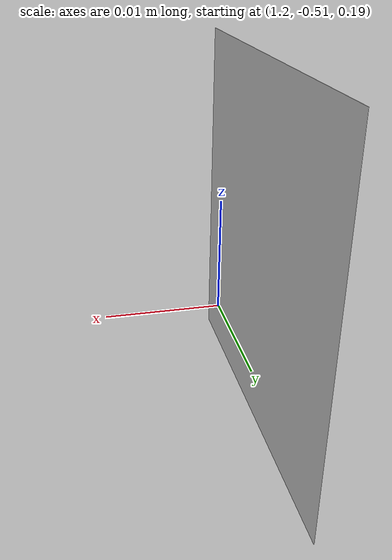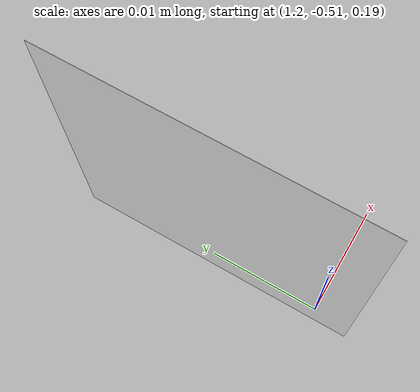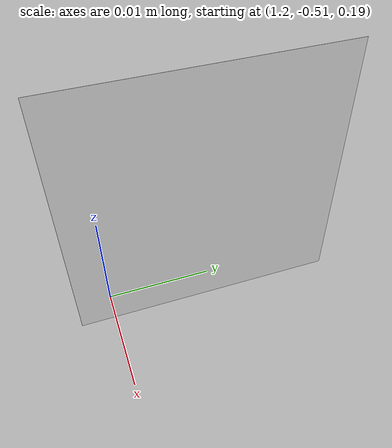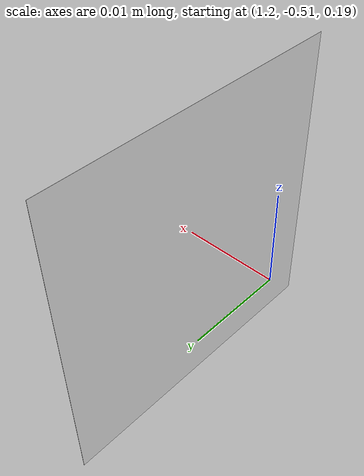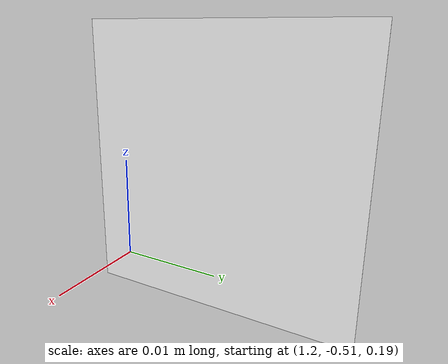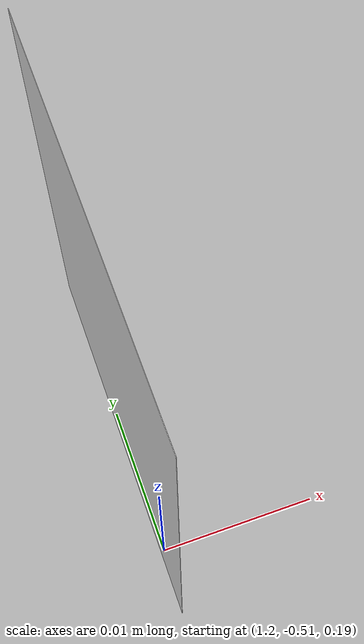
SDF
<sdf version="1.8">
 <world name="aruco_arena">
  <model name="aruco_upright_0">
   <static>true</static>
   <pose>1.2 -0.5 0.20 0 -1.57079632679 0</pose>
   <link name="tag">
    <visual name="white_margin">
     <geometry><plane><normal>0 0 1</normal><size>0.0266666667 0.0266666667</size></plane></geometry>
     <cast_shadows>false</cast_shadows>
     <material><ambient>1 1 1 1</ambient><diffuse>1 1 1 1</diffuse><specular>0 0 0 1</specular></material>
    </visual>
    <visual name="black_0_0">
     <pose>-0.0083333333 0.0083333333 1e-05 0 0 0</pose>
     <geometry><plane><normal>0 0 1</normal><size>0.0033333333 0.0033333333</size></plane></geometry>
     <cast_shadows>false</cast_shadows>
     <material><ambient>0 0 0 1</ambient><diffuse>0 0 0 1</diffuse><specular>0 0 0 1</specular></material>
    </visual>
    <visual name="black_0_1">
     <pose>-0.0050000000 0.0083333333 1e-05 0 0 0</pose>
     <geometry><plane><normal>0 0 1</normal><size>0.0033333333 0.0033333333</size></plane></geometry>
     <cast_shadows>false</cast_shadows>
     <material><ambient>0 0 0 1</ambient><diffuse>0 0 0 1</diffuse><specular>0 0 0 1</specular></material>
    </visual>
    <visual name="black_0_2">
     <pose>-0.0016666667 0.0083333333 1e-05 0 0 0</pose>
     <geometry><plane><normal>0 0 1</normal><size>0.0033333333 0.0033333333</size></plane></geometry>
     <cast_shadows>false</cast_shadows>
     <material><ambient>0 0 0 1</ambient><diffuse>0 0 0 1</diffuse><specular>0 0 0 1</specular></material>
    </visual>
    <visual name="black_0_3">
     <pose>0.0016666667 0.0083333333 1e-05 0 0 0</pose>
     <geometry><plane><normal>0 0 1</normal><size>0.0033333333 0.0033333333</size></plane></geometry>
     <cast_shadows>false</cast_shadows>
     <material><ambient>0 0 0 1</ambient><diffuse>0 0 0 1</diffuse><specular>0 0 0 1</specular></material>
    </visual>
    <visual name="black_0_4">
     <pose>0.0050000000 0.0083333333 1e-05 0 0 0</pose>
     <geometry><plane><normal>0 0 1</normal><size>0.0033333333 0.0033333333</size></plane></geometry>
     <cast_shadows>false</cast_shadows>
     <material><ambient>0 0 0 1</ambient><diffuse>0 0 0 1</diffuse><specular>0 0 0 1</specular></material>
    </visual>
    <visual name="black_0_5">
     <pose>0.0083333333 0.0083333333 1e-05 0 0 0</pose>
     <geometry><plane><normal>0 0 1</normal><size>0.0033333333 0.0033333333</size></plane></geometry>
     <cast_shadows>false</cast_shadows>
     <material><ambient>0 0 0 1</ambient><diffuse>0 0 0 1</diffuse><specular>0 0 0 1</specular></material>
    </visual>
    <visual name="black_1_0">
     <pose>-0.0083333333 0.0050000000 1e-05 0 0 0</pose>
     <geometry><plane><normal>0 0 1</normal><size>0.0033333333 0.0033333333</size></plane></geometry>
     <cast_shadows>false</cast_shadows>
     <material><ambient>0 0 0 1</ambient><diffuse>0 0 0 1</diffuse><specular>0 0 0 1</specular></material>
    </visual>
    <visual name="black_1_2">
     <pose>-0.0016666667 0.0050000000 1e-05 0 0 0</pose>
     <geometry><plane><normal>0 0 1</normal><size>0.0033333333 0.0033333333</size></plane></geometry>
     <cast_shadows>false</cast_shadows>
     <material><ambient>0 0 0 1</ambient><diffuse>0 0 0 1</diffuse><specular>0 0 0 1</specular></material>
    </visual>
    <visual name="black_1_5">
     <pose>0.0083333333 0.0050000000 1e-05 0 0 0</pose>
     <geometry><plane><normal>0 0 1</normal><size>0.0033333333 0.0033333333</size></plane></geometry>
     <cast_shadows>false</cast_shadows>
     <material><ambient>0 0 0 1</ambient><diffuse>0 0 0 1</diffuse><specular>0 0 0 1</specular></material>
    </visual>
    <visual name="black_2_0">
     <pose>-0.0083333333 0.0016666667 1e-05 0 0 0</pose>
     <geometry><plane><normal>0 0 1</normal><size>0.0033333333 0.0033333333</size></plane></geometry>
     <cast_shadows>false</cast_shadows>
     <material><ambient>0 0 0 1</ambient><diffuse>0 0 0 1</diffuse><specular>0 0 0 1</specular></material>
    </visual>
    <visual name="black_2_1">
     <pose>-0.0050000000 0.0016666667 1e-05 0 0 0</pose>
     <geometry><plane><normal>0 0 1</normal><size>0.0033333333 0.0033333333</size></plane></geometry>
     <cast_shadows>false</cast_shadows>
     <material><ambient>0 0 0 1</ambient><diffuse>0 0 0 1</diffuse><specular>0 0 0 1</specular></material>
    </visual>
    <visual name="black_2_3">
     <pose>0.0016666667 0.0016666667 1e-05 0 0 0</pose>
     <geometry><plane><normal>0 0 1</normal><size>0.0033333333 0.0033333333</size></plane></geometry>
     <cast_shadows>false</cast_shadows>
     <material><ambient>0 0 0 1</ambient><diffuse>0 0 0 1</diffuse><specular>0 0 0 1</specular></material>
    </visual>
    <visual name="black_2_5">
     <pose>0.0083333333 0.0016666667 1e-05 0 0 0</pose>
     <geometry><plane><normal>0 0 1</normal><size>0.0033333333 0.0033333333</size></plane></geometry>
     <cast_shadows>false</cast_shadows>
     <material><ambient>0 0 0 1</ambient><diffuse>0 0 0 1</diffuse><specular>0 0 0 1</specular></material>
    </visual>
    <visual name="black_3_0">
     <pose>-0.0083333333 -0.0016666667 1e-05 0 0 0</pose>
     <geometry><plane><normal>0 0 1</normal><size>0.0033333333 0.0033333333</size></plane></geometry>
     <cast_shadows>false</cast_shadows>
     <material><ambient>0 0 0 1</ambient><diffuse>0 0 0 1</diffuse><specular>0 0 0 1</specular></material>
    </visual>
    <visual name="black_3_1">
     <pose>-0.0050000000 -0.0016666667 1e-05 0 0 0</pose>
     <geometry><plane><normal>0 0 1</normal><size>0.0033333333 0.0033333333</size></plane></geometry>
     <cast_shadows>false</cast_shadows>
     <material><ambient>0 0 0 1</ambient><diffuse>0 0 0 1</diffuse><specular>0 0 0 1</specular></material>
    </visual>
    <visual name="black_3_2">
     <pose>-0.0016666667 -0.0016666667 1e-05 0 0 0</pose>
     <geometry><plane><normal>0 0 1</normal><size>0.0033333333 0.0033333333</size></plane></geometry>
     <cast_shadows>false</cast_shadows>
     <material><ambient>0 0 0 1</ambient><diffuse>0 0 0 1</diffuse><specular>0 0 0 1</specular></material>
    </visual>
    <visual name="black_3_5">
     <pose>0.0083333333 -0.0016666667 1e-05 0 0 0</pose>
     <geometry><plane><normal>0 0 1</normal><size>0.0033333333 0.0033333333</size></plane></geometry>
     <cast_shadows>false</cast_shadows>
     <material><ambient>0 0 0 1</ambient><diffuse>0 0 0 1</diffuse><specular>0 0 0 1</specular></material>
    </visual>
    <visual name="black_4_0">
     <pose>-0.0083333333 -0.0050000000 1e-05 0 0 0</pose>
     <geometry><plane><normal>0 0 1</normal><size>0.0033333333 0.0033333333</size></plane></geometry>
     <cast_shadows>false</cast_shadows>
     <material><ambient>0 0 0 1</ambient><diffuse>0 0 0 1</diffuse><specular>0 0 0 1</specular></material>
    </visual>
    <visual name="black_4_1">
     <pose>-0.0050000000 -0.0050000000 1e-05 0 0 0</pose>
     <geometry><plane><normal>0 0 1</normal><size>0.0033333333 0.0033333333</size></plane></geometry>
     <cast_shadows>false</cast_shadows>
     <material><ambient>0 0 0 1</ambient><diffuse>0 0 0 1</diffuse><specular>0 0 0 1</specular></material>
    </visual>
    <visual name="black_4_2">
     <pose>-0.0016666667 -0.0050000000 1e-05 0 0 0</pose>
     <geometry><plane><normal>0 0 1</normal><size>0.0033333333 0.0033333333</size></plane></geometry>
     <cast_shadows>false</cast_shadows>
     <material><ambient>0 0 0 1</ambient><diffuse>0 0 0 1</diffuse><specular>0 0 0 1</specular></material>
    </visual>
    <visual name="black_4_4">
     <pose>0.0050000000 -0.0050000000 1e-05 0 0 0</pose>
     <geometry><plane><normal>0 0 1</normal><size>0.0033333333 0.0033333333</size></plane></geometry>
     <cast_shadows>false</cast_shadows>
     <material><ambient>0 0 0 1</ambient><diffuse>0 0 0 1</diffuse><specular>0 0 0 1</specular></material>
    </visual>
    <visual name="black_4_5">
     <pose>0.0083333333 -0.0050000000 1e-05 0 0 0</pose>
     <geometry><plane><normal>0 0 1</normal><size>0.0033333333 0.0033333333</size></plane></geometry>
     <cast_shadows>false</cast_shadows>
     <material><ambient>0 0 0 1</ambient><diffuse>0 0 0 1</diffuse><specular>0 0 0 1</specular></material>
    </visual>
    <visual name="black_5_0">
     <pose>-0.0083333333 -0.0083333333 1e-05 0 0 0</pose>
     <geometry><plane><normal>0 0 1</normal><size>0.0033333333 0.0033333333</size></plane></geometry>
     <cast_shadows>false</cast_shadows>
     <material><ambient>0 0 0 1</ambient><diffuse>0 0 0 1</diffuse><specular>0 0 0 1</specular></material>
    </visual>
    <visual name="black_5_1">
     <pose>-0.0050000000 -0.0083333333 1e-05 0 0 0</pose>
     <geometry><plane><normal>0 0 1</normal><size>0.0033333333 0.0033333333</size></plane></geometry>
     <cast_shadows>false</cast_shadows>
     <material><ambient>0 0 0 1</ambient><diffuse>0 0 0 1</diffuse><specular>0 0 0 1</specular></material>
    </visual>
    <visual name="black_5_2">
     <pose>-0.0016666667 -0.0083333333 1e-05 0 0 0</pose>
     <geometry><plane><normal>0 0 1</normal><size>0.0033333333 0.0033333333</size></plane></geometry>
     <cast_shadows>false</cast_shadows>
     <material><ambient>0 0 0 1</ambient><diffuse>0 0 0 1</diffuse><specular>0 0 0 1</specular></material>
    </visual>
    <visual name="black_5_3">
     <pose>0.0016666667 -0.0083333333 1e-05 0 0 0</pose>
     <geometry><plane><normal>0 0 1</normal><size>0.0033333333 0.0033333333</size></plane></geometry>
     <cast_shadows>false</cast_shadows>
     <material><ambient>0 0 0 1</ambient><diffuse>0 0 0 1</diffuse><specular>0 0 0 1</specular></material>
    </visual>
    <visual name="black_5_4">
     <pose>0.0050000000 -0.0083333333 1e-05 0 0 0</pose>
     <geometry><plane><normal>0 0 1</normal><size>0.0033333333 0.0033333333</size></plane></geometry>
     <cast_shadows>false</cast_shadows>
     <material><ambient>0 0 0 1</ambient><diffuse>0 0 0 1</diffuse><specular>0 0 0 1</specular></material>
    </visual>
    <visual name="black_5_5">
     <pose>0.0083333333 -0.0083333333 1e-05 0 0 0</pose>
     <geometry><plane><normal>0 0 1</normal><size>0.0033333333 0.0033333333</size></plane></geometry>
     <cast_shadows>false</cast_shadows>
     <material><ambient>0 0 0 1</ambient><diffuse>0 0 0 1</diffuse><specular>0 0 0 1</specular></material>
    </visual>
   </link>
  </model>
  <model name="ground_plane">
   <static>true</static>
   <link name="ground">
    <collision name="collision">
     <geometry><plane><normal>0 0 1</normal><size>100 100</size></plane></geometry>
    </collision>
    <visual name="visual">
     <geometry><plane><normal>0 0 1</normal><size>100 100</size></plane></geometry>
     <material><ambient>0.7 0.7 0.7 1</ambient><diffuse>0.7 0.7 0.7 1</diffuse></material>
    </visual>
   </link>
  </model>
 </world>
</sdf>
